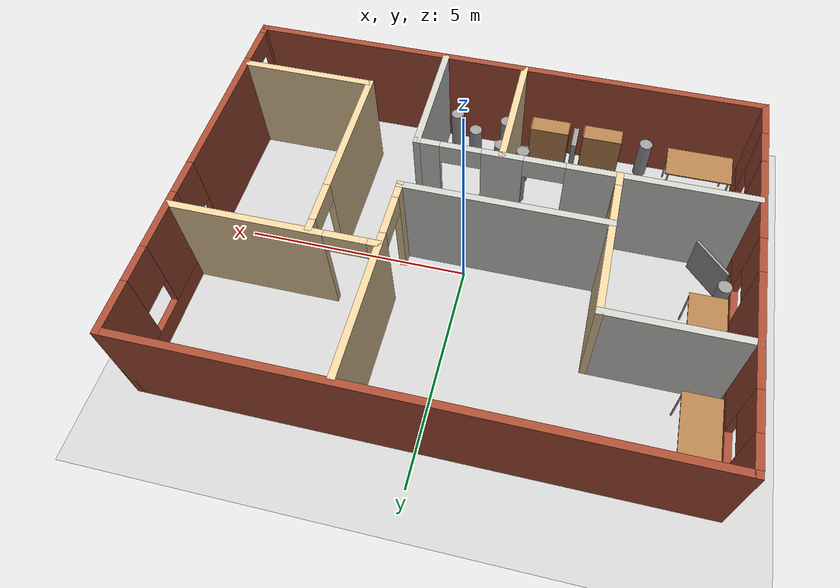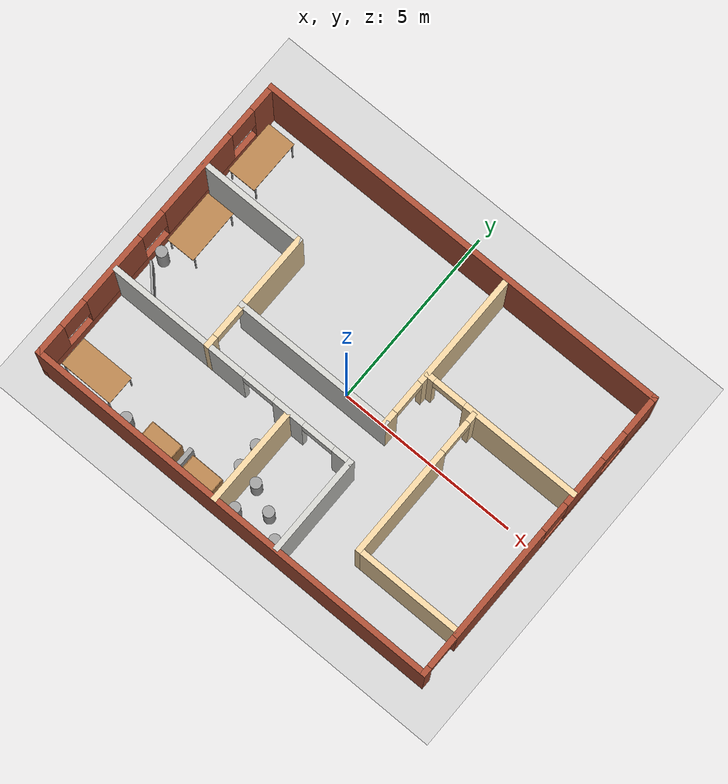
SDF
<sdf version="1.6">
 <world name="default">
  <model name="ground_plane">
   <static>1</static>
   <link name="link">
    <collision name="collision">
     <geometry><plane><normal>0 0 1</normal><size>100 100</size></plane></geometry>
     <surface><friction><ode><mu>100</mu><mu2>50</mu2></ode></friction></surface>
    </collision>
    <visual name="visual">
     <cast_shadows>0</cast_shadows>
     <geometry><plane><normal>0 0 1</normal><size>100 100</size></plane></geometry>
     <material>
      <script><uri>file://media/materials/scripts/gazebo.material</uri><name>Gazebo/Grey</name></script>
     </material>
    </visual>
   </link>
  </model>
  <model name="myplace">
   <pose>-0.014773 -0.002073 0 0 -0 0</pose>
   <link name="Wall_104">
    <pose>3.62551 1.22565 0 0 -0 3.14159</pose>
    <visual name="Wall_104_Visual_0">
     <pose>-0.587051 0 1.25 0 -0 0</pose>
     <geometry><box><size>3.3259 0.15 2.5</size></box></geometry>
     <material>
      <script><uri>file://media/materials/scripts/gazebo.material</uri><name>Gazebo/Grey</name></script>
      <ambient>0.921569 0.807843 0.615686 1</ambient>
     </material>
     <meta><layer>0</layer></meta>
    </visual>
    <collision name="Wall_104_Collision_0">
     <geometry><box><size>3.3259 0.15 2.5</size></box></geometry>
     <pose>-0.587051 0 1.25 0 -0 0</pose>
    </collision>
    <visual name="Wall_104_Visual_1">
     <pose>2.11295 0 1.25 0 -0 0</pose>
     <geometry><box><size>0.274103 0.15 2.5</size></box></geometry>
     <material>
      <script><uri>file://media/materials/scripts/gazebo.material</uri><name>Gazebo/Grey</name></script>
      <ambient>0.921569 0.807843 0.615686 1</ambient>
     </material>
     <meta><layer>0</layer></meta>
    </visual>
    <collision name="Wall_104_Collision_1">
     <geometry><box><size>0.274103 0.15 2.5</size></box></geometry>
     <pose>2.11295 0 1.25 0 -0 0</pose>
    </collision>
    <visual name="Wall_104_Visual_2">
     <pose>1.5259 0 2.25 0 -0 0</pose>
     <geometry><box><size>0.9 0.15 0.5</size></box></geometry>
     <material>
      <script><uri>file://media/materials/scripts/gazebo.material</uri><name>Gazebo/Grey</name></script>
      <ambient>0.921569 0.807843 0.615686 1</ambient>
     </material>
     <meta><layer>0</layer></meta>
    </visual>
    <collision name="Wall_104_Collision_2">
     <geometry><box><size>0.9 0.15 0.5</size></box></geometry>
     <pose>1.5259 0 2.25 0 -0 0</pose>
    </collision>
   </link>
   <link name="Wall_106">
    <pose>2.86292 -0.893742 0 0 0 -1.5708</pose>
    <visual name="Wall_106_Visual_0">
     <pose>-1.98867 0 1.25 0 -0 0</pose>
     <geometry><box><size>0.272657 0.15 2.5</size></box></geometry>
     <material>
      <script><uri>file://media/materials/scripts/gazebo.material</uri><name>Gazebo/Grey</name></script>
      <ambient>0.921569 0.807843 0.615686 1</ambient>
     </material>
     <meta><layer>0</layer></meta>
    </visual>
    <collision name="Wall_106_Collision_0">
     <geometry><box><size>0.272657 0.15 2.5</size></box></geometry>
     <pose>-1.98867 0 1.25 0 -0 0</pose>
    </collision>
    <visual name="Wall_106_Visual_1">
     <pose>0.586329 0 1.25 0 -0 0</pose>
     <geometry><box><size>3.07734 0.15 2.5</size></box></geometry>
     <material>
      <script><uri>file://media/materials/scripts/gazebo.material</uri><name>Gazebo/Grey</name></script>
      <ambient>0.921569 0.807843 0.615686 1</ambient>
     </material>
     <meta><layer>0</layer></meta>
    </visual>
    <collision name="Wall_106_Collision_1">
     <geometry><box><size>3.07734 0.15 2.5</size></box></geometry>
     <pose>0.586329 0 1.25 0 -0 0</pose>
    </collision>
    <visual name="Wall_106_Visual_2">
     <pose>-1.40234 0 2.25 0 -0 0</pose>
     <geometry><box><size>0.9 0.15 0.5</size></box></geometry>
     <material>
      <script><uri>file://media/materials/scripts/gazebo.material</uri><name>Gazebo/Grey</name></script>
      <ambient>0.921569 0.807843 0.615686 1</ambient>
     </material>
     <meta><layer>0</layer></meta>
    </visual>
    <collision name="Wall_106_Collision_2">
     <geometry><box><size>0.9 0.15 0.5</size></box></geometry>
     <pose>-1.40234 0 2.25 0 -0 0</pose>
    </collision>
   </link>
   <link name="Wall_114">
    <collision name="Wall_114_Collision">
     <geometry><box><size>3 0.15 2.5</size></box></geometry>
     <pose>0 0 1.25 0 -0 0</pose>
    </collision>
    <visual name="Wall_114_Visual">
     <pose>0 0 1.25 0 -0 0</pose>
     <geometry><box><size>3 0.15 2.5</size></box></geometry>
     <material>
      <script><uri>file://media/materials/scripts/gazebo.material</uri><name>Gazebo/Grey</name></script>
      <ambient>0.921569 0.807843 0.615686 1</ambient>
     </material>
     <meta><layer>0</layer></meta>
    </visual>
    <pose>4.28792 -2.94374 0 0 -0 0</pose>
   </link>
   <link name="Wall_47">
    <pose>-2.18696 -1.52463 0 0 -0 3.14159</pose>
    <visual name="Wall_47_Visual_0">
     <pose>-3.35943 0 1.25 0 -0 0</pose>
     <geometry><box><size>0.574323 0.15 2.5</size></box></geometry>
     <material>
      <script><uri>file://media/materials/scripts/gazebo.material</uri><name>Gazebo/CeilingTiled</name></script>
      <ambient>0.921569 0.807843 0.615686 1</ambient>
     </material>
     <meta><layer>0</layer></meta>
    </visual>
    <collision name="Wall_47_Collision_0">
     <geometry><box><size>0.574323 0.15 2.5</size></box></geometry>
     <pose>-3.35943 0 1.25 0 -0 0</pose>
    </collision>
    <visual name="Wall_47_Visual_1">
     <pose>-1.72463 0 1.25 0 -0 0</pose>
     <geometry><box><size>0.89527 0.15 2.5</size></box></geometry>
     <material>
      <script><uri>file://media/materials/scripts/gazebo.material</uri><name>Gazebo/CeilingTiled</name></script>
      <ambient>0.921569 0.807843 0.615686 1</ambient>
     </material>
     <meta><layer>0</layer></meta>
    </visual>
    <collision name="Wall_47_Collision_1">
     <geometry><box><size>0.89527 0.15 2.5</size></box></geometry>
     <pose>-1.72463 0 1.25 0 -0 0</pose>
    </collision>
    <visual name="Wall_47_Visual_2">
     <pose>1.6348 0 1.25 0 -0 0</pose>
     <geometry><box><size>4.02359 0.15 2.5</size></box></geometry>
     <material>
      <script><uri>file://media/materials/scripts/gazebo.material</uri><name>Gazebo/CeilingTiled</name></script>
      <ambient>0.921569 0.807843 0.615686 1</ambient>
     </material>
     <meta><layer>0</layer></meta>
    </visual>
    <collision name="Wall_47_Collision_2">
     <geometry><box><size>4.02359 0.15 2.5</size></box></geometry>
     <pose>1.6348 0 1.25 0 -0 0</pose>
    </collision>
    <visual name="Wall_47_Visual_3">
     <pose>-2.62227 0 2.25 0 -0 0</pose>
     <geometry><box><size>0.9 0.15 0.5</size></box></geometry>
     <material>
      <script><uri>file://media/materials/scripts/gazebo.material</uri><name>Gazebo/CeilingTiled</name></script>
      <ambient>0.921569 0.807843 0.615686 1</ambient>
     </material>
     <meta><layer>0</layer></meta>
    </visual>
    <collision name="Wall_47_Collision_3">
     <geometry><box><size>0.9 0.15 0.5</size></box></geometry>
     <pose>-2.62227 0 2.25 0 -0 0</pose>
    </collision>
    <visual name="Wall_47_Visual_4">
     <pose>-0.827 0 2.25 0 -0 0</pose>
     <geometry><box><size>0.9 0.15 0.5</size></box></geometry>
     <material>
      <script><uri>file://media/materials/scripts/gazebo.material</uri><name>Gazebo/CeilingTiled</name></script>
      <ambient>0.921569 0.807843 0.615686 1</ambient>
     </material>
     <meta><layer>0</layer></meta>
    </visual>
    <collision name="Wall_47_Collision_4">
     <geometry><box><size>0.9 0.15 0.5</size></box></geometry>
     <pose>-0.827 0 2.25 0 -0 0</pose>
    </collision>
   </link>
   <link name="Wall_49">
    <pose>-5.82011 0 0 0 0 -1.5708</pose>
    <visual name="Wall_49_Visual_0">
     <pose>-3.85497 0 1.25 0 -0 0</pose>
     <geometry><box><size>0.790055 0.15 2.5</size></box></geometry>
     <material>
      <script><uri>file://media/materials/scripts/gazebo.material</uri><name>Gazebo/Bricks</name></script>
      <ambient>1 1 1 1</ambient>
     </material>
     <meta><layer>0</layer></meta>
    </visual>
    <collision name="Wall_49_Collision_0">
     <geometry><box><size>0.790055 0.15 2.5</size></box></geometry>
     <pose>-3.85497 0 1.25 0 -0 0</pose>
    </collision>
    <visual name="Wall_49_Visual_1">
     <pose>0.395028 0 0.25 0 -0 0</pose>
     <geometry><box><size>7.70995 0.15 0.5</size></box></geometry>
     <material>
      <script><uri>file://media/materials/scripts/gazebo.material</uri><name>Gazebo/Bricks</name></script>
      <ambient>1 1 1 1</ambient>
     </material>
     <meta><layer>0</layer></meta>
    </visual>
    <collision name="Wall_49_Collision_1">
     <geometry><box><size>7.70995 0.15 0.5</size></box></geometry>
     <pose>0.395028 0 0.25 0 -0 0</pose>
    </collision>
    <visual name="Wall_49_Visual_2">
     <pose>-1.4408 0 1.5 0 -0 0</pose>
     <geometry><box><size>2.43829 0.15 2</size></box></geometry>
     <material>
      <script><uri>file://media/materials/scripts/gazebo.material</uri><name>Gazebo/Bricks</name></script>
      <ambient>1 1 1 1</ambient>
     </material>
     <meta><layer>0</layer></meta>
    </visual>
    <collision name="Wall_49_Collision_2">
     <geometry><box><size>2.43829 0.15 2</size></box></geometry>
     <pose>-1.4408 0 1.5 0 -0 0</pose>
    </collision>
    <visual name="Wall_49_Visual_3">
     <pose>1.57623 0 1.5 0 -0 0</pose>
     <geometry><box><size>1.99579 0.15 2</size></box></geometry>
     <material>
      <script><uri>file://media/materials/scripts/gazebo.material</uri><name>Gazebo/Bricks</name></script>
      <ambient>1 1 1 1</ambient>
     </material>
     <meta><layer>0</layer></meta>
    </visual>
    <collision name="Wall_49_Collision_3">
     <geometry><box><size>1.99579 0.15 2</size></box></geometry>
     <pose>1.57623 0 1.5 0 -0 0</pose>
    </collision>
    <visual name="Wall_49_Visual_4">
     <pose>3.81206 0 1.5 0 -0 0</pose>
     <geometry><box><size>0.875873 0.15 2</size></box></geometry>
     <material>
      <script><uri>file://media/materials/scripts/gazebo.material</uri><name>Gazebo/Bricks</name></script>
      <ambient>1 1 1 1</ambient>
     </material>
     <meta><layer>0</layer></meta>
    </visual>
    <collision name="Wall_49_Collision_4">
     <geometry><box><size>0.875873 0.15 2</size></box></geometry>
     <pose>3.81206 0 1.5 0 -0 0</pose>
    </collision>
    <visual name="Wall_49_Visual_5">
     <pose>-3.05994 0 1.9 0 -0 0</pose>
     <geometry><box><size>0.8 0.15 1.2</size></box></geometry>
     <material>
      <script><uri>file://media/materials/scripts/gazebo.material</uri><name>Gazebo/Bricks</name></script>
      <ambient>1 1 1 1</ambient>
     </material>
     <meta><layer>0</layer></meta>
    </visual>
    <collision name="Wall_49_Collision_5">
     <geometry><box><size>0.8 0.15 1.2</size></box></geometry>
     <pose>-3.05994 0 1.9 0 -0 0</pose>
    </collision>
    <visual name="Wall_49_Visual_6">
     <pose>0.17834 0 1.9 0 -0 0</pose>
     <geometry><box><size>0.8 0.15 1.2</size></box></geometry>
     <material>
      <script><uri>file://media/materials/scripts/gazebo.material</uri><name>Gazebo/Bricks</name></script>
      <ambient>1 1 1 1</ambient>
     </material>
     <meta><layer>0</layer></meta>
    </visual>
    <collision name="Wall_49_Collision_6">
     <geometry><box><size>0.8 0.15 1.2</size></box></geometry>
     <pose>0.17834 0 1.9 0 -0 0</pose>
    </collision>
    <visual name="Wall_49_Visual_7">
     <pose>2.97413 0 1.9 0 -0 0</pose>
     <geometry><box><size>0.8 0.15 1.2</size></box></geometry>
     <material>
      <script><uri>file://media/materials/scripts/gazebo.material</uri><name>Gazebo/Bricks</name></script>
      <ambient>1 1 1 1</ambient>
     </material>
     <meta><layer>0</layer></meta>
    </visual>
    <collision name="Wall_49_Collision_7">
     <geometry><box><size>0.8 0.15 1.2</size></box></geometry>
     <pose>2.97413 0 1.9 0 -0 0</pose>
    </collision>
   </link>
   <link name="Wall_53">
    <pose>5.82011 0 0 0 -0 1.5708</pose>
    <visual name="Wall_53_Visual_0">
     <pose>-4.11865 0 1.25 0 -0 0</pose>
     <geometry><box><size>0.262693 0.15 2.5</size></box></geometry>
     <material>
      <script><uri>file://media/materials/scripts/gazebo.material</uri><name>Gazebo/Bricks</name></script>
      <ambient>1 1 1 1</ambient>
     </material>
     <meta><layer>0</layer></meta>
    </visual>
    <collision name="Wall_53_Collision_0">
     <geometry><box><size>0.262693 0.15 2.5</size></box></geometry>
     <pose>-4.11865 0 1.25 0 -0 0</pose>
    </collision>
    <visual name="Wall_53_Visual_1">
     <pose>-1.48084 0 1.25 0 -0 0</pose>
     <geometry><box><size>3.21294 0.15 2.5</size></box></geometry>
     <material>
      <script><uri>file://media/materials/scripts/gazebo.material</uri><name>Gazebo/Bricks</name></script>
      <ambient>1 1 1 1</ambient>
     </material>
     <meta><layer>0</layer></meta>
    </visual>
    <collision name="Wall_53_Collision_1">
     <geometry><box><size>3.21294 0.15 2.5</size></box></geometry>
     <pose>-1.48084 0 1.25 0 -0 0</pose>
    </collision>
    <visual name="Wall_53_Visual_2">
     <pose>2.18782 0 0.25 0 -0 0</pose>
     <geometry><box><size>4.12437 0.15 0.5</size></box></geometry>
     <material>
      <script><uri>file://media/materials/scripts/gazebo.material</uri><name>Gazebo/Bricks</name></script>
      <ambient>1 1 1 1</ambient>
     </material>
     <meta><layer>0</layer></meta>
    </visual>
    <collision name="Wall_53_Collision_2">
     <geometry><box><size>4.12437 0.15 0.5</size></box></geometry>
     <pose>2.18782 0 0.25 0 -0 0</pose>
    </collision>
    <visual name="Wall_53_Visual_3">
     <pose>1.61177 0 1.5 0 -0 0</pose>
     <geometry><box><size>1.37227 0.15 2</size></box></geometry>
     <material>
      <script><uri>file://media/materials/scripts/gazebo.material</uri><name>Gazebo/Bricks</name></script>
      <ambient>1 1 1 1</ambient>
     </material>
     <meta><layer>0</layer></meta>
    </visual>
    <collision name="Wall_53_Collision_3">
     <geometry><box><size>1.37227 0.15 2</size></box></geometry>
     <pose>1.61177 0 1.5 0 -0 0</pose>
    </collision>
    <visual name="Wall_53_Visual_4">
     <pose>3.67395 0 1.5 0 -0 0</pose>
     <geometry><box><size>1.1521 0.15 2</size></box></geometry>
     <material>
      <script><uri>file://media/materials/scripts/gazebo.material</uri><name>Gazebo/Bricks</name></script>
      <ambient>1 1 1 1</ambient>
     </material>
     <meta><layer>0</layer></meta>
    </visual>
    <collision name="Wall_53_Collision_4">
     <geometry><box><size>1.1521 0.15 2</size></box></geometry>
     <pose>3.67395 0 1.5 0 -0 0</pose>
    </collision>
    <visual name="Wall_53_Visual_5">
     <pose>0.525634 0 1.9 0 -0 0</pose>
     <geometry><box><size>0.8 0.15 1.2</size></box></geometry>
     <material>
      <script><uri>file://media/materials/scripts/gazebo.material</uri><name>Gazebo/Bricks</name></script>
      <ambient>1 1 1 1</ambient>
     </material>
     <meta><layer>0</layer></meta>
    </visual>
    <collision name="Wall_53_Collision_5">
     <geometry><box><size>0.8 0.15 1.2</size></box></geometry>
     <pose>0.525634 0 1.9 0 -0 0</pose>
    </collision>
    <visual name="Wall_53_Visual_6">
     <pose>2.6979 0 1.9 0 -0 0</pose>
     <geometry><box><size>0.8 0.15 1.2</size></box></geometry>
     <material>
      <script><uri>file://media/materials/scripts/gazebo.material</uri><name>Gazebo/Bricks</name></script>
      <ambient>1 1 1 1</ambient>
     </material>
     <meta><layer>0</layer></meta>
    </visual>
    <collision name="Wall_53_Collision_6">
     <geometry><box><size>0.8 0.15 1.2</size></box></geometry>
     <pose>2.6979 0 1.9 0 -0 0</pose>
    </collision>
    <visual name="Wall_53_Visual_7">
     <pose>-3.53731 0 2.25 0 -0 0</pose>
     <geometry><box><size>0.9 0.15 0.5</size></box></geometry>
     <material>
      <script><uri>file://media/materials/scripts/gazebo.material</uri><name>Gazebo/Bricks</name></script>
      <ambient>1 1 1 1</ambient>
     </material>
     <meta><layer>0</layer></meta>
    </visual>
    <collision name="Wall_53_Collision_7">
     <geometry><box><size>0.9 0.15 0.5</size></box></geometry>
     <pose>-3.53731 0 2.25 0 -0 0</pose>
    </collision>
   </link>
   <link name="Wall_63">
    <pose>-2.92989 0.111193 0 0 0 -1.5708</pose>
    <visual name="Wall_63_Visual_0">
     <pose>-0.619935 0 1.25 0 -0 0</pose>
     <geometry><box><size>2.18258 0.15 2.5</size></box></geometry>
     <material>
      <script><uri>file://media/materials/scripts/gazebo.material</uri><name>Gazebo/Grey</name></script>
      <ambient>0.921569 0.807843 0.615686 1</ambient>
     </material>
     <meta><layer>0</layer></meta>
    </visual>
    <collision name="Wall_63_Collision_0">
     <geometry><box><size>2.18258 0.15 2.5</size></box></geometry>
     <pose>-0.619935 0 1.25 0 -0 0</pose>
    </collision>
    <visual name="Wall_63_Visual_1">
     <pose>1.54129 0 1.25 0 -0 0</pose>
     <geometry><box><size>0.33987 0.15 2.5</size></box></geometry>
     <material>
      <script><uri>file://media/materials/scripts/gazebo.material</uri><name>Gazebo/Grey</name></script>
      <ambient>0.921569 0.807843 0.615686 1</ambient>
     </material>
     <meta><layer>0</layer></meta>
    </visual>
    <collision name="Wall_63_Collision_1">
     <geometry><box><size>0.33987 0.15 2.5</size></box></geometry>
     <pose>1.54129 0 1.25 0 -0 0</pose>
    </collision>
    <visual name="Wall_63_Visual_2">
     <pose>0.921354 0 2.25 0 -0 0</pose>
     <geometry><box><size>0.9 0.15 0.5</size></box></geometry>
     <material>
      <script><uri>file://media/materials/scripts/gazebo.material</uri><name>Gazebo/Grey</name></script>
      <ambient>0.921569 0.807843 0.615686 1</ambient>
     </material>
     <meta><layer>0</layer></meta>
    </visual>
    <collision name="Wall_63_Collision_2">
     <geometry><box><size>0.9 0.15 0.5</size></box></geometry>
     <pose>0.921354 0 2.25 0 -0 0</pose>
    </collision>
   </link>
   <link name="Wall_65">
    <collision name="Wall_65_Collision">
     <geometry><box><size>2.75 0.15 2.5</size></box></geometry>
     <pose>0 0 1.25 0 -0 0</pose>
    </collision>
    <visual name="Wall_65_Visual">
     <pose>0 0 1.25 0 -0 0</pose>
     <geometry><box><size>2.75 0.15 2.5</size></box></geometry>
     <material>
      <script><uri>file://media/materials/scripts/gazebo.material</uri><name>Gazebo/CeilingTiled</name></script>
      <ambient>0.921569 0.807843 0.615686 1</ambient>
     </material>
     <meta><layer>0</layer></meta>
    </visual>
    <pose>1.38463 -2.82463 0 0 0 -1.5708</pose>
   </link>
   <link name="Wall_68">
    <collision name="Wall_68_Collision">
     <geometry><box><size>2.75 0.15 2.5</size></box></geometry>
     <pose>0 0 1.25 0 -0 0</pose>
    </collision>
    <visual name="Wall_68_Visual">
     <pose>0 0 1.25 0 -0 0</pose>
     <geometry><box><size>2.75 0.15 2.5</size></box></geometry>
     <material>
      <script><uri>file://media/materials/scripts/gazebo.material</uri><name>Gazebo/Grey</name></script>
      <ambient>0.921569 0.807843 0.615686 1</ambient>
     </material>
     <meta><layer>0</layer></meta>
    </visual>
    <pose>-0.456438 -2.86618 0 0 0 -1.5708</pose>
   </link>
   <link name="Wall_71">
    <collision name="Wall_71_Collision">
     <geometry><box><size>4.5 0.15 2.5</size></box></geometry>
     <pose>0 0 1.25 0 -0 0</pose>
    </collision>
    <visual name="Wall_71_Visual">
     <pose>0 0 1.25 0 -0 0</pose>
     <geometry><box><size>4.5 0.15 2.5</size></box></geometry>
     <material>
      <script><uri>file://media/materials/scripts/gazebo.material</uri><name>Gazebo/CeilingTiled</name></script>
      <ambient>0.921569 0.807843 0.615686 1</ambient>
     </material>
     <meta><layer>0</layer></meta>
    </visual>
    <pose>-0.757802 -0.286519 0 0 -0 3.14159</pose>
   </link>
   <link name="Wall_78">
    <collision name="Wall_78_Collision">
     <geometry><box><size>3 0.15 2.5</size></box></geometry>
     <pose>0 0 1.25 0 -0 0</pose>
    </collision>
    <visual name="Wall_78_Visual">
     <pose>0 0 1.25 0 -0 0</pose>
     <geometry><box><size>3 0.15 2.5</size></box></geometry>
     <material>
      <script><uri>file://media/materials/scripts/gazebo.material</uri><name>Gazebo/CeilingTiled</name></script>
      <ambient>0.921569 0.807843 0.615686 1</ambient>
     </material>
     <meta><layer>0</layer></meta>
    </visual>
    <pose>-4.35489 1.74738 0 0 -0 3.14159</pose>
   </link>
   <link name="Wall_80">
    <collision name="Wall_80_Collision">
     <geometry><box><size>11.7902 0.15 2.5</size></box></geometry>
     <pose>0 0 1.25 0 -0 0</pose>
    </collision>
    <visual name="Wall_80_Visual">
     <pose>0 0 1.25 0 -0 0</pose>
     <geometry><box><size>11.7902 0.15 2.5</size></box></geometry>
     <material>
      <script><uri>file://media/materials/scripts/gazebo.material</uri><name>Gazebo/Bricks</name></script>
      <ambient>1 1 1 1</ambient>
     </material>
     <meta><layer>0</layer></meta>
    </visual>
    <pose>0 4.175 0 0 -0 0</pose>
   </link>
   <link name="Wall_82">
    <collision name="Wall_82_Collision">
     <geometry><box><size>11.7902 0.15 2.5</size></box></geometry>
     <pose>0 0 1.25 0 -0 0</pose>
    </collision>
    <visual name="Wall_82_Visual">
     <pose>0 0 1.25 0 -0 0</pose>
     <geometry><box><size>11.7902 0.15 2.5</size></box></geometry>
     <material>
      <script><uri>file://media/materials/scripts/gazebo.material</uri><name>Gazebo/Bricks</name></script>
      <ambient>1 1 1 1</ambient>
     </material>
     <meta><layer>0</layer></meta>
    </visual>
    <pose>0 -4.175 0 0 -0 0</pose>
   </link>
   <link name="Wall_89">
    <pose>1.4172 1.88848 0 0 -0 1.5708</pose>
    <visual name="Wall_89_Visual_0">
     <pose>-2.03994 0 1.25 0 -0 0</pose>
     <geometry><box><size>0.42012 0.15 2.5</size></box></geometry>
     <material>
      <script><uri>file://media/materials/scripts/gazebo.material</uri><name>Gazebo/Grey</name></script>
      <ambient>0.921569 0.807843 0.615686 1</ambient>
     </material>
     <meta><layer>0</layer></meta>
    </visual>
    <collision name="Wall_89_Collision_0">
     <geometry><box><size>0.42012 0.15 2.5</size></box></geometry>
     <pose>-2.03994 0 1.25 0 -0 0</pose>
    </collision>
    <visual name="Wall_89_Visual_1">
     <pose>0.66006 0 1.25 0 -0 0</pose>
     <geometry><box><size>3.17988 0.15 2.5</size></box></geometry>
     <material>
      <script><uri>file://media/materials/scripts/gazebo.material</uri><name>Gazebo/Grey</name></script>
      <ambient>0.921569 0.807843 0.615686 1</ambient>
     </material>
     <meta><layer>0</layer></meta>
    </visual>
    <collision name="Wall_89_Collision_1">
     <geometry><box><size>3.17988 0.15 2.5</size></box></geometry>
     <pose>0.66006 0 1.25 0 -0 0</pose>
    </collision>
    <visual name="Wall_89_Visual_2">
     <pose>-1.37988 0 2.25 0 -0 0</pose>
     <geometry><box><size>0.9 0.15 0.5</size></box></geometry>
     <material>
      <script><uri>file://media/materials/scripts/gazebo.material</uri><name>Gazebo/Grey</name></script>
      <ambient>0.921569 0.807843 0.615686 1</ambient>
     </material>
     <meta><layer>0</layer></meta>
    </visual>
    <collision name="Wall_89_Collision_2">
     <geometry><box><size>0.9 0.15 0.5</size></box></geometry>
     <pose>-1.37988 0 2.25 0 -0 0</pose>
    </collision>
   </link>
   <static>1</static>
  </model>
  <model name="table">
   <static>1</static>
   <link name="link">
    <collision name="surface">
     <pose>0 0 1 0 -0 0</pose>
     <geometry><box><size>1.5 0.8 0.03</size></box></geometry>
     <surface><friction><ode><mu>0.6</mu><mu2>0.6</mu2></ode></friction></surface>
    </collision>
    <visual name="visual1">
     <pose>0 0 1 0 -0 0</pose>
     <geometry><box><size>1.5 0.8 0.03</size></box></geometry>
     <material>
      <script><uri>file://media/materials/scripts/gazebo.material</uri><name>Gazebo/Wood</name></script>
     </material>
    </visual>
    <collision name="front_left_leg">
     <pose>0.68 0.38 0.5 0 -0 0</pose>
     <geometry><cylinder><radius>0.02</radius><length>1</length></cylinder></geometry>
    </collision>
    <visual name="front_left_leg">
     <pose>0.68 0.38 0.5 0 -0 0</pose>
     <geometry><cylinder><radius>0.02</radius><length>1</length></cylinder></geometry>
     <material>
      <script><uri>file://media/materials/scripts/gazebo.material</uri><name>Gazebo/Grey</name></script>
     </material>
    </visual>
    <collision name="front_right_leg">
     <pose>0.68 -0.38 0.5 0 -0 0</pose>
     <geometry><cylinder><radius>0.02</radius><length>1</length></cylinder></geometry>
    </collision>
    <visual name="front_right_leg">
     <pose>0.68 -0.38 0.5 0 -0 0</pose>
     <geometry><cylinder><radius>0.02</radius><length>1</length></cylinder></geometry>
     <material>
      <script><uri>file://media/materials/scripts/gazebo.material</uri><name>Gazebo/Grey</name></script>
     </material>
    </visual>
    <collision name="back_right_leg">
     <pose>-0.68 -0.38 0.5 0 -0 0</pose>
     <geometry><cylinder><radius>0.02</radius><length>1</length></cylinder></geometry>
    </collision>
    <visual name="back_right_leg">
     <pose>-0.68 -0.38 0.5 0 -0 0</pose>
     <geometry><cylinder><radius>0.02</radius><length>1</length></cylinder></geometry>
     <material>
      <script><uri>file://media/materials/scripts/gazebo.material</uri><name>Gazebo/Grey</name></script>
     </material>
    </visual>
    <collision name="back_left_leg">
     <pose>-0.68 0.38 0.5 0 -0 0</pose>
     <geometry><cylinder><radius>0.02</radius><length>1</length></cylinder></geometry>
    </collision>
    <visual name="back_left_leg">
     <pose>-0.68 0.38 0.5 0 -0 0</pose>
     <geometry><cylinder><radius>0.02</radius><length>1</length></cylinder></geometry>
     <material>
      <script><uri>file://media/materials/scripts/gazebo.material</uri><name>Gazebo/Grey</name></script>
     </material>
    </visual>
   </link>
   <pose>-5.2 3 0 0 -0 1.5707</pose>
  </model>
  <model name="table_clone_0">
   <static>1</static>
   <link name="link">
    <collision name="surface">
     <pose>0 0 1 0 -0 0</pose>
     <geometry><box><size>1.5 0.8 0.03</size></box></geometry>
     <surface><friction><ode><mu>0.6</mu><mu2>0.6</mu2></ode></friction></surface>
    </collision>
    <visual name="visual1">
     <pose>0 0 1 0 -0 0</pose>
     <geometry><box><size>1.5 0.8 0.03</size></box></geometry>
     <material>
      <script><uri>file://media/materials/scripts/gazebo.material</uri><name>Gazebo/Wood</name></script>
     </material>
    </visual>
    <collision name="front_left_leg">
     <pose>0.68 0.38 0.5 0 -0 0</pose>
     <geometry><cylinder><radius>0.02</radius><length>1</length></cylinder></geometry>
    </collision>
    <visual name="front_left_leg">
     <pose>0.68 0.38 0.5 0 -0 0</pose>
     <geometry><cylinder><radius>0.02</radius><length>1</length></cylinder></geometry>
     <material>
      <script><uri>file://media/materials/scripts/gazebo.material</uri><name>Gazebo/Grey</name></script>
     </material>
    </visual>
    <collision name="front_right_leg">
     <pose>0.68 -0.38 0.5 0 -0 0</pose>
     <geometry><cylinder><radius>0.02</radius><length>1</length></cylinder></geometry>
    </collision>
    <visual name="front_right_leg">
     <pose>0.68 -0.38 0.5 0 -0 0</pose>
     <geometry><cylinder><radius>0.02</radius><length>1</length></cylinder></geometry>
     <material>
      <script><uri>file://media/materials/scripts/gazebo.material</uri><name>Gazebo/Grey</name></script>
     </material>
    </visual>
    <collision name="back_right_leg">
     <pose>-0.68 -0.38 0.5 0 -0 0</pose>
     <geometry><cylinder><radius>0.02</radius><length>1</length></cylinder></geometry>
    </collision>
    <visual name="back_right_leg">
     <pose>-0.68 -0.38 0.5 0 -0 0</pose>
     <geometry><cylinder><radius>0.02</radius><length>1</length></cylinder></geometry>
     <material>
      <script><uri>file://media/materials/scripts/gazebo.material</uri><name>Gazebo/Grey</name></script>
     </material>
    </visual>
    <collision name="back_left_leg">
     <pose>-0.68 0.38 0.5 0 -0 0</pose>
     <geometry><cylinder><radius>0.02</radius><length>1</length></cylinder></geometry>
    </collision>
    <visual name="back_left_leg">
     <pose>-0.68 0.38 0.5 0 -0 0</pose>
     <geometry><cylinder><radius>0.02</radius><length>1</length></cylinder></geometry>
     <material>
      <script><uri>file://media/materials/scripts/gazebo.material</uri><name>Gazebo/Grey</name></script>
     </material>
    </visual>
   </link>
   <pose>-5.2 0.75 0 0 0 -1.56485</pose>
  </model>
  <model name="bookshelf_clone_3">
   <static>1</static>
   <link name="link">
    <inertial><mass>1</mass></inertial>
    <collision name="back">
     <pose>0 0.005 0.6 0 -0 0</pose>
     <geometry><box><size>0.9 0.01 1.2</size></box></geometry>
    </collision>
    <visual name="visual1">
     <pose>0 0.005 0.6 0 -0 0</pose>
     <geometry><box><size>0.9 0.01 1.2</size></box></geometry>
     <material>
      <script><uri>file://media/materials/scripts/gazebo.material</uri><name>Gazebo/Wood</name></script>
     </material>
    </visual>
    <collision name="left_side">
     <pose>0.45 -0.195 0.6 0 -0 0</pose>
     <geometry><box><size>0.02 0.4 1.2</size></box></geometry>
    </collision>
    <visual name="visual2">
     <pose>0.45 -0.195 0.6 0 -0 0</pose>
     <geometry><box><size>0.02 0.4 1.2</size></box></geometry>
     <material>
      <script><uri>file://media/materials/scripts/gazebo.material</uri><name>Gazebo/Wood</name></script>
     </material>
    </visual>
    <collision name="right_side">
     <pose>-0.45 -0.195 0.6 0 -0 0</pose>
     <geometry><box><size>0.02 0.4 1.2</size></box></geometry>
    </collision>
    <visual name="visual3">
     <pose>-0.45 -0.195 0.6 0 -0 0</pose>
     <geometry><box><size>0.02 0.4 1.2</size></box></geometry>
     <material>
      <script><uri>file://media/materials/scripts/gazebo.material</uri><name>Gazebo/Wood</name></script>
     </material>
    </visual>
    <collision name="bottom">
     <pose>0 -0.195 0.03 0 -0 0</pose>
     <geometry><box><size>0.88 0.4 0.06</size></box></geometry>
    </collision>
    <visual name="visual4">
     <pose>0 -0.195 0.03 0 -0 0</pose>
     <geometry><box><size>0.88 0.4 0.06</size></box></geometry>
     <material>
      <script><uri>file://media/materials/scripts/gazebo.material</uri><name>Gazebo/Wood</name></script>
     </material>
    </visual>
    <collision name="top">
     <pose>0 -0.195 1.19 0 -0 0</pose>
     <geometry><box><size>0.88 0.4 0.02</size></box></geometry>
    </collision>
    <visual name="visual5">
     <pose>0 -0.195 1.19 0 -0 0</pose>
     <geometry><box><size>0.88 0.4 0.02</size></box></geometry>
     <material>
      <script><uri>file://media/materials/scripts/gazebo.material</uri><name>Gazebo/Wood</name></script>
     </material>
    </visual>
    <collision name="low_shelf">
     <pose>0 -0.195 0.43 0 -0 0</pose>
     <geometry><box><size>0.88 0.4 0.02</size></box></geometry>
    </collision>
    <visual name="visual6">
     <pose>0 -0.195 0.43 0 -0 0</pose>
     <geometry><box><size>0.88 0.4 0.02</size></box></geometry>
     <material>
      <script><uri>file://media/materials/scripts/gazebo.material</uri><name>Gazebo/Wood</name></script>
     </material>
    </visual>
    <collision name="high_shelf">
     <pose>0 -0.195 0.8 0 -0 0</pose>
     <geometry><box><size>0.88 0.4 0.02</size></box></geometry>
    </collision>
    <visual name="visual7">
     <pose>0 -0.195 0.8 0 -0 0</pose>
     <geometry><box><size>0.88 0.4 0.02</size></box></geometry>
     <material>
      <script><uri>file://media/materials/scripts/gazebo.material</uri><name>Gazebo/Wood</name></script>
     </material>
    </visual>
   </link>
   <pose>-2.5 -3.6 0 0 -0 0</pose>
  </model>
  <model name="bookshelf_clone_4">
   <static>1</static>
   <link name="link">
    <inertial><mass>1</mass></inertial>
    <collision name="back">
     <pose>0 0.005 0.6 0 -0 0</pose>
     <geometry><box><size>0.9 0.01 1.2</size></box></geometry>
    </collision>
    <visual name="visual1">
     <pose>0 0.005 0.6 0 -0 0</pose>
     <geometry><box><size>0.9 0.01 1.2</size></box></geometry>
     <material>
      <script><uri>file://media/materials/scripts/gazebo.material</uri><name>Gazebo/Wood</name></script>
     </material>
    </visual>
    <collision name="left_side">
     <pose>0.45 -0.195 0.6 0 -0 0</pose>
     <geometry><box><size>0.02 0.4 1.2</size></box></geometry>
    </collision>
    <visual name="visual2">
     <pose>0.45 -0.195 0.6 0 -0 0</pose>
     <geometry><box><size>0.02 0.4 1.2</size></box></geometry>
     <material>
      <script><uri>file://media/materials/scripts/gazebo.material</uri><name>Gazebo/Wood</name></script>
     </material>
    </visual>
    <collision name="right_side">
     <pose>-0.45 -0.195 0.6 0 -0 0</pose>
     <geometry><box><size>0.02 0.4 1.2</size></box></geometry>
    </collision>
    <visual name="visual3">
     <pose>-0.45 -0.195 0.6 0 -0 0</pose>
     <geometry><box><size>0.02 0.4 1.2</size></box></geometry>
     <material>
      <script><uri>file://media/materials/scripts/gazebo.material</uri><name>Gazebo/Wood</name></script>
     </material>
    </visual>
    <collision name="bottom">
     <pose>0 -0.195 0.03 0 -0 0</pose>
     <geometry><box><size>0.88 0.4 0.06</size></box></geometry>
    </collision>
    <visual name="visual4">
     <pose>0 -0.195 0.03 0 -0 0</pose>
     <geometry><box><size>0.88 0.4 0.06</size></box></geometry>
     <material>
      <script><uri>file://media/materials/scripts/gazebo.material</uri><name>Gazebo/Wood</name></script>
     </material>
    </visual>
    <collision name="top">
     <pose>0 -0.195 1.19 0 -0 0</pose>
     <geometry><box><size>0.88 0.4 0.02</size></box></geometry>
    </collision>
    <visual name="visual5">
     <pose>0 -0.195 1.19 0 -0 0</pose>
     <geometry><box><size>0.88 0.4 0.02</size></box></geometry>
     <material>
      <script><uri>file://media/materials/scripts/gazebo.material</uri><name>Gazebo/Wood</name></script>
     </material>
    </visual>
    <collision name="low_shelf">
     <pose>0 -0.195 0.43 0 -0 0</pose>
     <geometry><box><size>0.88 0.4 0.02</size></box></geometry>
    </collision>
    <visual name="visual6">
     <pose>0 -0.195 0.43 0 -0 0</pose>
     <geometry><box><size>0.88 0.4 0.02</size></box></geometry>
     <material>
      <script><uri>file://media/materials/scripts/gazebo.material</uri><name>Gazebo/Wood</name></script>
     </material>
    </visual>
    <collision name="high_shelf">
     <pose>0 -0.195 0.8 0 -0 0</pose>
     <geometry><box><size>0.88 0.4 0.02</size></box></geometry>
    </collision>
    <visual name="visual7">
     <pose>0 -0.195 0.8 0 -0 0</pose>
     <geometry><box><size>0.88 0.4 0.02</size></box></geometry>
     <material>
      <script><uri>file://media/materials/scripts/gazebo.material</uri><name>Gazebo/Wood</name></script>
     </material>
    </visual>
   </link>
   <pose>-1.25 -3.6 0 0 -0 0</pose>
  </model>
  <model name="table_clone_1">
   <static>1</static>
   <link name="link">
    <collision name="surface">
     <pose>0 0 1 0 -0 0</pose>
     <geometry><box><size>1.5 0.8 0.03</size></box></geometry>
     <surface><friction><ode><mu>0.6</mu><mu2>0.6</mu2></ode></friction></surface>
    </collision>
    <visual name="visual1">
     <pose>0 0 1 0 -0 0</pose>
     <geometry><box><size>1.5 0.8 0.03</size></box></geometry>
     <material>
      <script><uri>file://media/materials/scripts/gazebo.material</uri><name>Gazebo/Wood</name></script>
     </material>
    </visual>
    <collision name="front_left_leg">
     <pose>0.68 0.38 0.5 0 -0 0</pose>
     <geometry><cylinder><radius>0.02</radius><length>1</length></cylinder></geometry>
    </collision>
    <visual name="front_left_leg">
     <pose>0.68 0.38 0.5 0 -0 0</pose>
     <geometry><cylinder><radius>0.02</radius><length>1</length></cylinder></geometry>
     <material>
      <script><uri>file://media/materials/scripts/gazebo.material</uri><name>Gazebo/Grey</name></script>
     </material>
    </visual>
    <collision name="front_right_leg">
     <pose>0.68 -0.38 0.5 0 -0 0</pose>
     <geometry><cylinder><radius>0.02</radius><length>1</length></cylinder></geometry>
    </collision>
    <visual name="front_right_leg">
     <pose>0.68 -0.38 0.5 0 -0 0</pose>
     <geometry><cylinder><radius>0.02</radius><length>1</length></cylinder></geometry>
     <material>
      <script><uri>file://media/materials/scripts/gazebo.material</uri><name>Gazebo/Grey</name></script>
     </material>
    </visual>
    <collision name="back_right_leg">
     <pose>-0.68 -0.38 0.5 0 -0 0</pose>
     <geometry><cylinder><radius>0.02</radius><length>1</length></cylinder></geometry>
    </collision>
    <visual name="back_right_leg">
     <pose>-0.68 -0.38 0.5 0 -0 0</pose>
     <geometry><cylinder><radius>0.02</radius><length>1</length></cylinder></geometry>
     <material>
      <script><uri>file://media/materials/scripts/gazebo.material</uri><name>Gazebo/Grey</name></script>
     </material>
    </visual>
    <collision name="back_left_leg">
     <pose>-0.68 0.38 0.5 0 -0 0</pose>
     <geometry><cylinder><radius>0.02</radius><length>1</length></cylinder></geometry>
    </collision>
    <visual name="back_left_leg">
     <pose>-0.68 0.38 0.5 0 -0 0</pose>
     <geometry><cylinder><radius>0.02</radius><length>1</length></cylinder></geometry>
     <material>
      <script><uri>file://media/materials/scripts/gazebo.material</uri><name>Gazebo/Grey</name></script>
     </material>
    </visual>
   </link>
   <pose>-4.8 -3.5 0 0 -0 0</pose>
  </model>
  <model name="unit_cylinder_clone">
   <pose>-0.732505 -3.04161 0.499995 0 0 -0.629202</pose>
   <link name="link">
    <inertial>
     <mass>1</mass>
     <inertia><ixx>0.145833</ixx><ixy>0</ixy><ixz>0</ixz><iyy>0.145833</iyy><iyz>0</iyz><izz>0.125</izz></inertia>
    </inertial>
    <collision name="collision">
     <geometry><cylinder><radius>0.150561</radius><length>1</length></cylinder></geometry>
    </collision>
    <visual name="visual">
     <geometry><cylinder><radius>0.150561</radius><length>1</length></cylinder></geometry>
     <material>
      <script><name>Gazebo/Grey</name><uri>file://media/materials/scripts/gazebo.material</uri></script>
     </material>
    </visual>
   </link>
  </model>
  <model name="unit_cylinder_clone_0">
   <pose>-0.756852 -2.4286 0.499996 0 -0 7.7e-05</pose>
   <link name="link">
    <inertial>
     <mass>1</mass>
     <inertia><ixx>0.145833</ixx><ixy>0</ixy><ixz>0</ixz><iyy>0.145833</iyy><iyz>0</iyz><izz>0.125</izz></inertia>
    </inertial>
    <collision name="collision">
     <geometry><cylinder><radius>0.150561</radius><length>1</length></cylinder></geometry>
    </collision>
    <visual name="visual">
     <geometry><cylinder><radius>0.150561</radius><length>1</length></cylinder></geometry>
     <material>
      <script><name>Gazebo/Grey</name><uri>file://media/materials/scripts/gazebo.material</uri></script>
     </material>
    </visual>
   </link>
  </model>
  <model name="unit_cylinder_clone_1">
   <pose>-3.5368 -3.9045 0.499994 0 -0 0.00023</pose>
   <link name="link">
    <inertial>
     <mass>1</mass>
     <inertia><ixx>0.145833</ixx><ixy>0</ixy><ixz>0</ixz><iyy>0.145833</iyy><iyz>0</iyz><izz>0.125</izz></inertia>
    </inertial>
    <collision name="collision">
     <geometry><cylinder><radius>0.150561</radius><length>1</length></cylinder></geometry>
    </collision>
    <visual name="visual">
     <geometry><cylinder><radius>0.150561</radius><length>1</length></cylinder></geometry>
     <material>
      <script><name>Gazebo/Grey</name><uri>file://media/materials/scripts/gazebo.material</uri></script>
     </material>
    </visual>
   </link>
  </model>
  <model name="unit_box_0_clone_clone_0_clone">
   <pose>-5.2368 -0.996854 0.5 0 0 -0.813873</pose>
   <link name="link">
    <inertial>
     <mass>1</mass>
     <inertia>
      <ixx>0.166667</ixx>
      <ixy>0</ixy>
      <ixz>0</ixz>
      <iyy>0.166667</iyy>
      <iyz>0</iyz>
      <izz>0.166667</izz>
     </inertia>
    </inertial>
    <collision name="collision"><geometry><box><size>1 0.062572 1</size></box></geometry></collision>
    <visual name="visual">
     <geometry><box><size>1 0.062572 1</size></box></geometry>
     <material>
      <script><name>Gazebo/Grey</name><uri>file://media/materials/scripts/gazebo.material</uri></script>
     </material>
    </visual>
   </link>
  </model>
  <model name="unit_cylinder">
   <pose>1.03831 -3.87319 0.499992 0 -0 0</pose>
   <link name="link">
    <inertial>
     <mass>1</mass>
     <inertia><ixx>0.145833</ixx><ixy>0</ixy><ixz>0</ixz><iyy>0.145833</iyy><iyz>0</iyz><izz>0.125</izz></inertia>
    </inertial>
    <collision name="collision">
     <geometry><cylinder><radius>0.148324</radius><length>1</length></cylinder></geometry>
    </collision>
    <visual name="visual">
     <geometry><cylinder><radius>0.148324</radius><length>1</length></cylinder></geometry>
     <material>
      <script><name>Gazebo/Grey</name><uri>file://media/materials/scripts/gazebo.material</uri></script>
     </material>
    </visual>
   </link>
  </model>
  <model name="unit_cylinder_clone_3">
   <pose>-0.177168 -3.12537 0.499992 0 -0 0</pose>
   <link name="link">
    <inertial>
     <mass>1</mass>
     <inertia><ixx>0.145833</ixx><ixy>0</ixy><ixz>0</ixz><iyy>0.145833</iyy><iyz>0</iyz><izz>0.125</izz></inertia>
    </inertial>
    <collision name="collision">
     <geometry><cylinder><radius>0.148325</radius><length>1</length></cylinder></geometry>
    </collision>
    <visual name="visual">
     <geometry><cylinder><radius>0.148325</radius><length>1</length></cylinder></geometry>
     <material>
      <script><name>Gazebo/Grey</name><uri>file://media/materials/scripts/gazebo.material</uri></script>
     </material>
    </visual>
   </link>
  </model>
  <model name="unit_cylinder_clone_4">
   <pose>-0.17628 -3.89616 0.499998 0 -0 0</pose>
   <link name="link">
    <inertial>
     <mass>1</mass>
     <inertia><ixx>0.145833</ixx><ixy>0</ixy><ixz>0</ixz><iyy>0.145833</iyy><iyz>0</iyz><izz>0.125</izz></inertia>
    </inertial>
    <collision name="collision">
     <geometry><cylinder><radius>0.148325</radius><length>1</length></cylinder></geometry>
    </collision>
    <visual name="visual">
     <geometry><cylinder><radius>0.148325</radius><length>1</length></cylinder></geometry>
     <material>
      <script><name>Gazebo/Grey</name><uri>file://media/materials/scripts/gazebo.material</uri></script>
     </material>
    </visual>
   </link>
  </model>
  <model name="unit_cylinder_clone_5">
   <pose>0.497968 -3.45681 0.499992 0 -0 0</pose>
   <link name="link">
    <inertial>
     <mass>1</mass>
     <inertia><ixx>0.145833</ixx><ixy>0</ixy><ixz>0</ixz><iyy>0.145833</iyy><iyz>0</iyz><izz>0.125</izz></inertia>
    </inertial>
    <collision name="collision">
     <geometry><cylinder><radius>0.148325</radius><length>1</length></cylinder></geometry>
    </collision>
    <visual name="visual">
     <geometry><cylinder><radius>0.148325</radius><length>1</length></cylinder></geometry>
     <material>
      <script><name>Gazebo/Grey</name><uri>file://media/materials/scripts/gazebo.material</uri></script>
     </material>
    </visual>
   </link>
  </model>
  <model name="unit_cylinder_clone_0_clone_clone">
   <pose>-5.52395 -0.308435 0.499998 0 -0 6.9e-05</pose>
   <link name="link">
    <inertial>
     <mass>1</mass>
     <inertia><ixx>0.145833</ixx><ixy>0</ixy><ixz>0</ixz><iyy>0.145833</iyy><iyz>0</iyz><izz>0.125</izz></inertia>
    </inertial>
    <collision name="collision">
     <geometry><cylinder><radius>0.150561</radius><length>1</length></cylinder></geometry>
    </collision>
    <visual name="visual">
     <geometry><cylinder><radius>0.150561</radius><length>1</length></cylinder></geometry>
     <material>
      <script><name>Gazebo/Grey</name><uri>file://media/materials/scripts/gazebo.material</uri></script>
     </material>
    </visual>
   </link>
  </model>
  <model name="unit_box_0">
   <pose>-1.86606 -3.75807 0.499997 1e-06 -0 2e-06</pose>
   <link name="link">
    <inertial>
     <mass>1</mass>
     <inertia>
      <ixx>0.166667</ixx>
      <ixy>0</ixy>
      <ixz>0</ixz>
      <iyy>0.166667</iyy>
      <iyz>0</iyz>
      <izz>0.166667</izz>
     </inertia>
    </inertial>
    <collision name="collision"><geometry><box><size>0.118481 0.56903 1</size></box></geometry></collision>
    <visual name="visual">
     <geometry><box><size>0.118481 0.56903 1</size></box></geometry>
     <material>
      <script><name>Gazebo/Grey</name><uri>file://media/materials/scripts/gazebo.material</uri></script>
     </material>
    </visual>
   </link>
  </model>
 </world>
</sdf>
